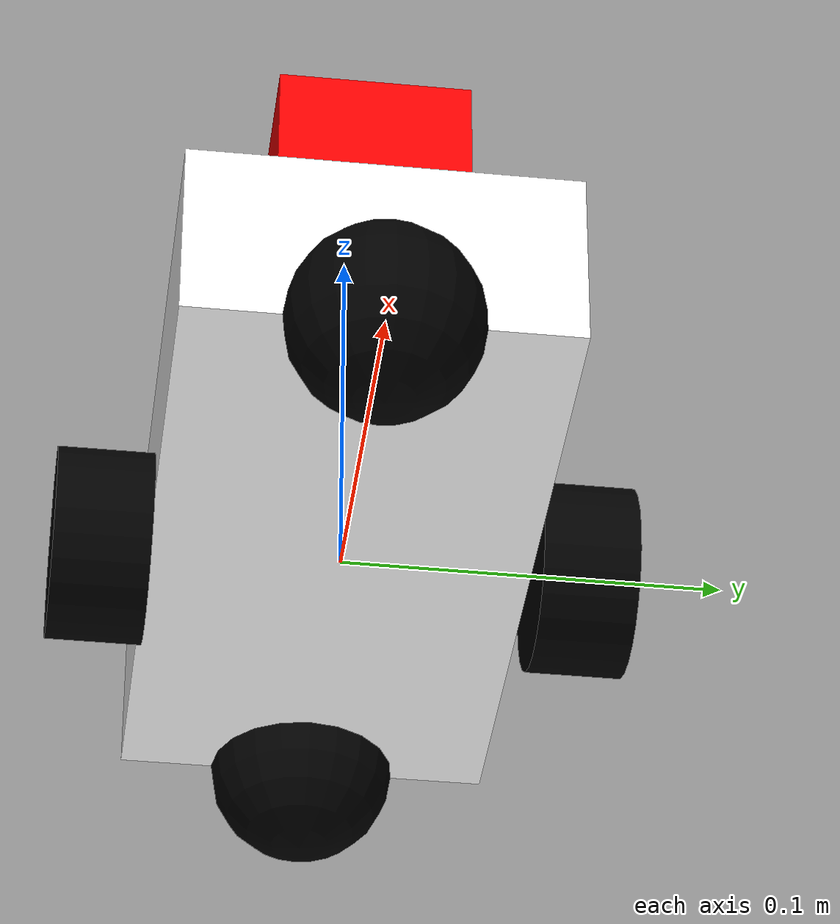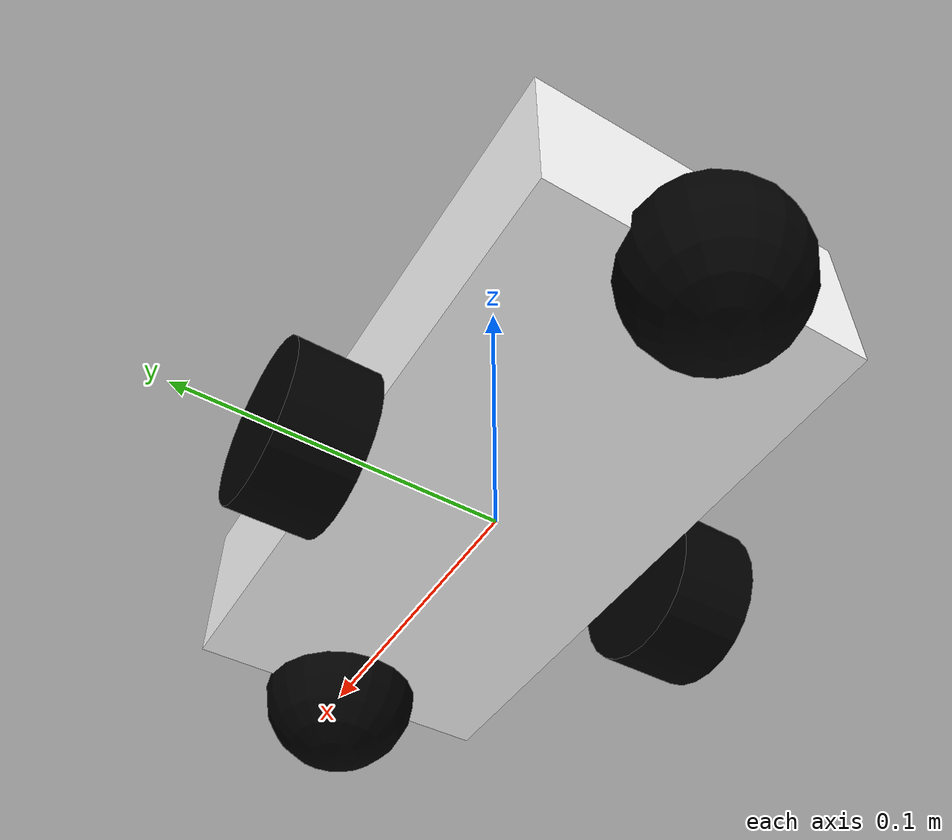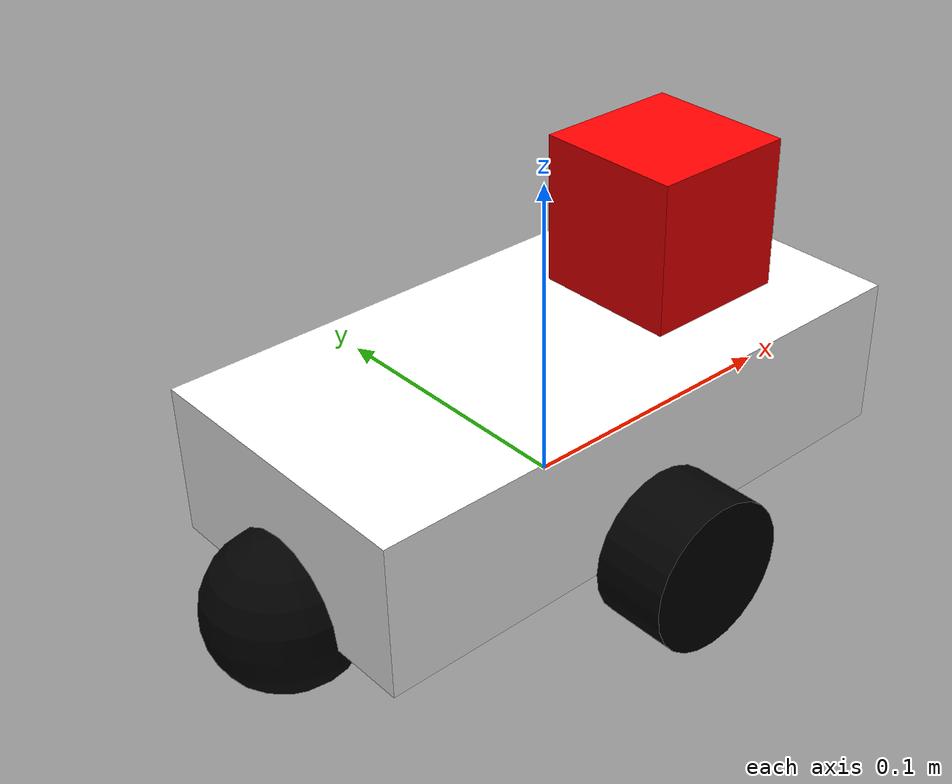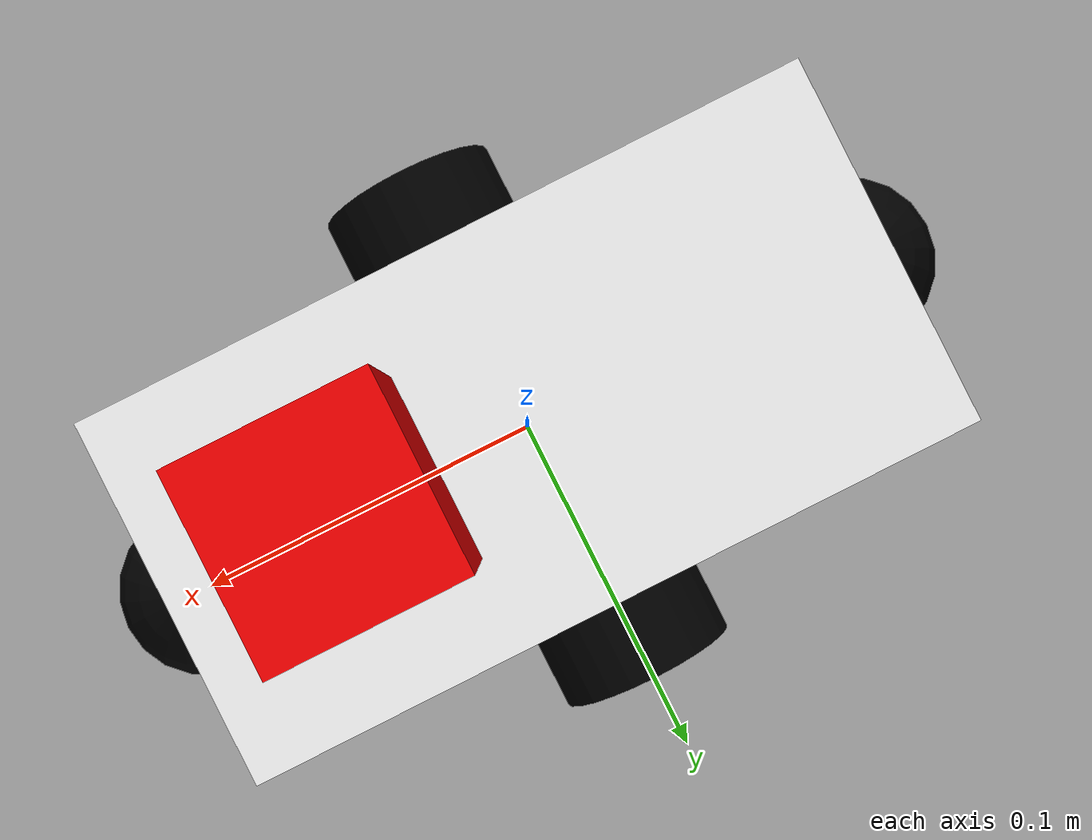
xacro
<?xml version="1.0"?>
<robot xmlns:xacro="http://www.ros.org/wiki/xacro" name="vechile">
<xacro:property name="body_x" value="0.2" />
<xacro:property name="body_y" value="0.1" />
<xacro:property name="body_z" value="0.05" />
<xacro:property name="wheel_r" value="0.025" />
<xacro:property name="wheel_l" value="0.025" />
<xacro:property name="body_mass" value="0.5" />
<xacro:property name="wheel_mass" value="0.05" />
<xacro:property name="pi" value="3.1415926"/>
<xacro:property name="lidar_a" value="0.05"/>
<xacro:property name="lidar_mass" value="0.05" />
<xacro:property name="lidar_name" value="camera" />
<xacro:property name="sphere_r" value="0.025" />
<xacro:property name="sphere_mass" value="0.05" />

<material name="black">
    <color rgba="0 0 0 1"/>
</material>

<material name="white">
    <color rgba="1 1 1 1"/>
</material>
<material name="red">
    <color rgba="1 0 0 1"/>
</material>
<material name="green">
    <color rgba="0 1 0 1"/>
</material>
<material name="blue">
    <color rgba="0 0 1 1"/>
</material>
<link name="base_link">
    <visual>
        <geometry>
            <box size="${body_x} ${body_y} ${body_z}"/>
        </geometry>
        <material name="white"/>
        <origin xyz="0 0 ${body_z/2}"/>
    </visual>
    <collision>
        <geometry>
            <box size="${body_x} ${body_y} ${body_z}"/>
        </geometry>
        <origin xyz="0 0 ${body_z/2}"/>
    </collision>
    <inertial>
        <mass value="${body_mass}" />
        <inertia ixx="${body_mass/12*(body_y*body_y+body_z*body_z)}"
        iyy="${body_mass/12*(body_x*body_x+body_z*body_z)}"
        izz="${body_mass/12*(body_y*body_y+body_x*body_x)}"
        ixy="0.0" ixz="0.0" iyz="0.0"/>
    </inertial>

</link>
<gazebo reference="base_link">
    <material>Gazebo/White</material>
</gazebo>

<xacro:macro name="wheel" params="prefix">
    <link name="${prefix}_wheel">
        <visual>
            <geometry>
                <cylinder length="${wheel_l}" radius="${wheel_r}"/>
            </geometry>
            <material name="black"/>
            <origin xyz="0 0 0" rpy="${pi/2} 0 0" />
        </visual>
        <collision>
            <geometry>
                <cylinder length="${wheel_l}" radius="${wheel_r}"/>
            </geometry>
            <origin xyz="0 0 0" rpy="${pi/2} 0 0" />
        </collision>
        <inertial>
            <mass value="${wheel_mass}" />
            <inertia ixx="${wheel_mass/12*(3*wheel_r*wheel_r+wheel_l*wheel_l)}"
            iyy="${wheel_mass/12*(3*wheel_r*wheel_r+wheel_l*wheel_l)}"
            izz="${wheel_mass/2*(wheel_r*wheel_r)}"
            ixy="0.0" ixz="0.0" iyz="0.0"/>
        </inertial>
    </link>
    <transmission name="${prefix}_wheel_trans">
        <type>transmission_interface/SimpleTransmission</type>
        <actuator name="${prefix}_wheel_motor">
            <mechanicalReduction>1</mechanicalReduction>
        </actuator>
        <joint name="${prefix}_wheel_to_base">
            <hardwareInterface>VelocityJointInterface</hardwareInterface>
        </joint>
    </transmission>
    <gazebo reference="${prefix}_wheel">
      <mu1 value="200.0"/>
      <mu2 value="100.0"/>
      <kp value="10000000.0" />
      <kd value="1.0" />
      <material>Gazebo/Grey</material>
    </gazebo>

</xacro:macro>

<xacro:macro name="sphere_wheel" params="prefix">
    <link name="${prefix}_sphere">
        <visual>
            <geometry>
                <sphere radius="${sphere_r}" />
            </geometry>
            <material name="black"/>
            <origin xyz="0 0 0" rpy="0 0 0" />
        </visual>
        <collision>
            <geometry>
                <sphere radius="${sphere_r}" />
            </geometry>
            <origin xyz="0 0 0" rpy="0 0 0" />
        </collision>
        <inertial>
            <mass value="${sphere_mass}" />
            <inertia ixx="${sphere_mass*2/3*(sphere_r*sphere_r)}"
            iyy="${sphere_mass*2/3*(sphere_r*sphere_r)}"
            izz="${sphere_mass*2/3*(sphere_r*sphere_r)}"
            ixy="0.0" ixz="0.0" iyz="0.0"/>
        </inertial>
    </link>
</xacro:macro>

<xacro:wheel prefix="left_front" />
<xacro:wheel prefix="right_front" />
<joint name="left_front_wheel_to_base" type="continuous">
    <parent link="base_link"/>
    <child link="left_front_wheel"/>
    <origin xyz="0 ${body_y/2+wheel_l/2} 0" />
    <axis xyz="0 1 0"/>
</joint>

<joint name="right_front_wheel_to_base" type="continuous">
    <parent link="base_link"/>
    <child link="right_front_wheel"/>
    <origin xyz="0 ${-body_y/2-wheel_l/2} 0"/>
    <axis xyz="0 1 0"/>
</joint>

<xacro:sphere_wheel prefix="front" />
<xacro:sphere_wheel prefix="back" />

<joint name="front_sphere_to_base" type="fixed">
    <parent link="base_link"/>
    <child link="front_sphere"/>
    <origin xyz="${body_x/2} 0 0" />
</joint>

<joint name="back_sphere_to_base" type="fixed">
    <parent link="base_link"/>
    <child link="back_sphere"/>
    <origin xyz="${-body_x/2} 0 0" />

</joint>

<link name="lidar_link">
    <visual>
        <geometry>
            <box size="${lidar_a} ${lidar_a} ${lidar_a}"/>
        </geometry>
        <material name="red"/>
        <origin xyz="0 0 ${lidar_a/2}"/>
    </visual>
    <collision>
        <geometry>
            <box size="${lidar_a} ${lidar_a} ${lidar_a}"/>
        </geometry>
        <origin xyz="0 0 ${lidar_a/2}"/>
    </collision>
    <inertial>
        <mass value="${lidar_mass}" />
        <inertia
        ixx="${lidar_mass/12*(lidar_a*lidar_a+lidar_a*lidar_a)}"
        iyy="${lidar_mass/12*(lidar_a*lidar_a+lidar_a*lidar_a)}"
        izz="${lidar_mass/12*(lidar_a*lidar_a+lidar_a*lidar_a)}"
        ixy="0.0" ixz="0.0" iyz="0.0"/>
    </inertial>
</link>
<joint name="lidar_base" type="fixed">
    <parent link="base_link"/>
    <child link="lidar_link"/>
    <origin xyz="${body_x/4} 0 ${body_z}"/>
</joint>
<gazebo reference="lidar_link">
      <material>Gazebo/Red</material>
</gazebo>

<gazebo>
  <plugin name="differential_drive_controller" filename="libgazebo_ros_diff_drive.so">
    <alwaysOn>true</alwaysOn>
    <updateRate>30</updateRate>
    <leftJoint>left_front_wheel_to_base</leftJoint>
    <rightJoint>right_front_wheel_to_base</rightJoint>
    <wheelSeparation>0.5380</wheelSeparation>
    <wheelDiameter>0.2410</wheelDiameter>
    <torque>20</torque>
    <commandTopic>cmd_vel</commandTopic>

    <publishOdom>false</publishOdom>
    <odometryTopic>odom</odometryTopic>
    <odometryFrame>odom</odometryFrame>
    <robotBaseFrame>base_link</robotBaseFrame>
  </plugin>

</gazebo>

 <gazebo reference="lidar_link">
    <sensor type="ray" name="head_hokuyo_sensor">
      <pose>0 0 0 0 0 0</pose>
      <visualize>false</visualize>
      <update_rate>40</update_rate>
      <ray>
        <scan>
          <horizontal>
            <samples>720</samples>
            <resolution>1</resolution>
            <min_angle>-1.570796</min_angle>
            <max_angle>1.570796</max_angle>
          </horizontal>
        </scan>
        <range>
          <min>0.10</min>
          <max>30.0</max>
          <resolution>0.01</resolution>
        </range>
        <noise>
          <type>gaussian</type>
          <mean>0.0</mean>
          <stddev>0.01</stddev>
        </noise>
      </ray>
      <plugin name="gazebo_ros_head_hokuyo_controller" filename="libgazebo_ros_laser.so">
        <topicName>scan</topicName>
        <frameName>lidar_link</frameName>
      </plugin>
    </sensor>
  </gazebo>

</robot>
